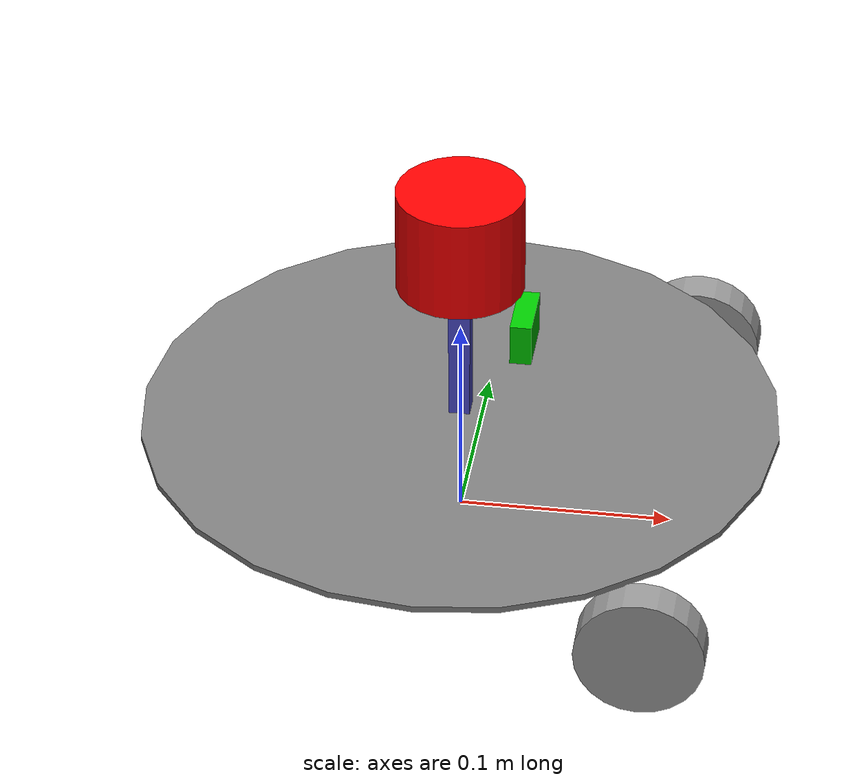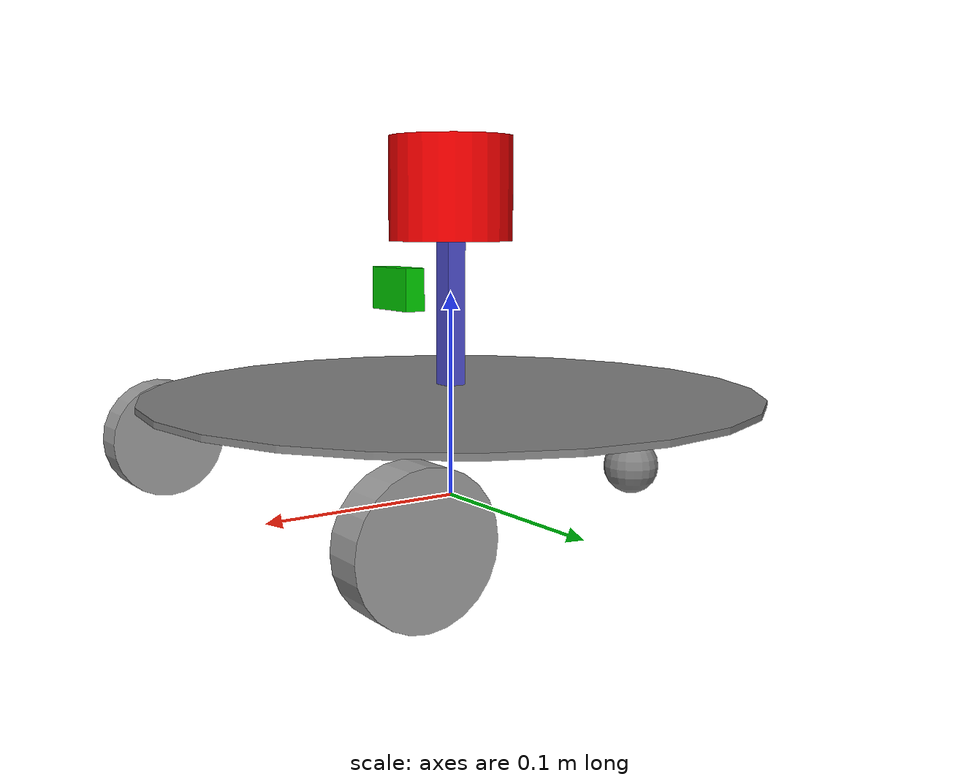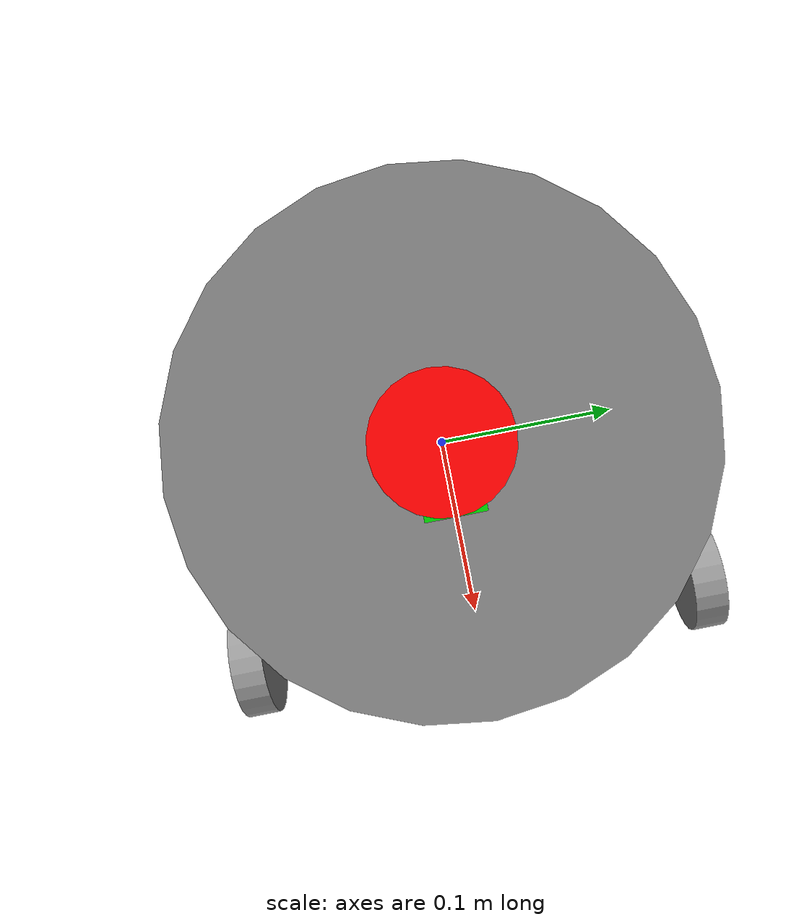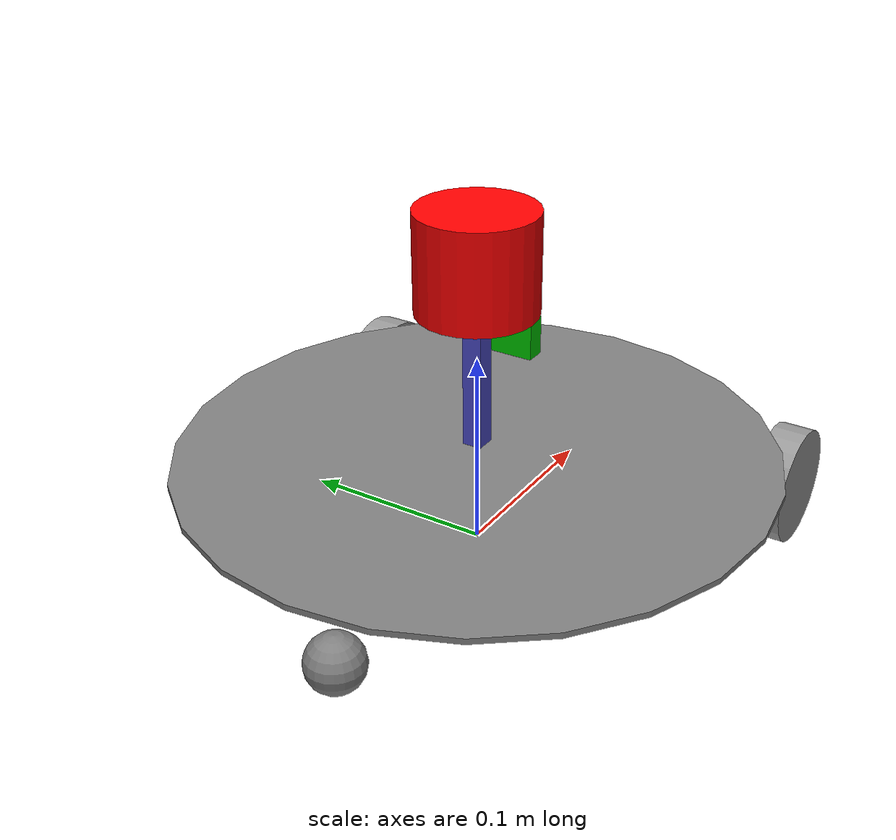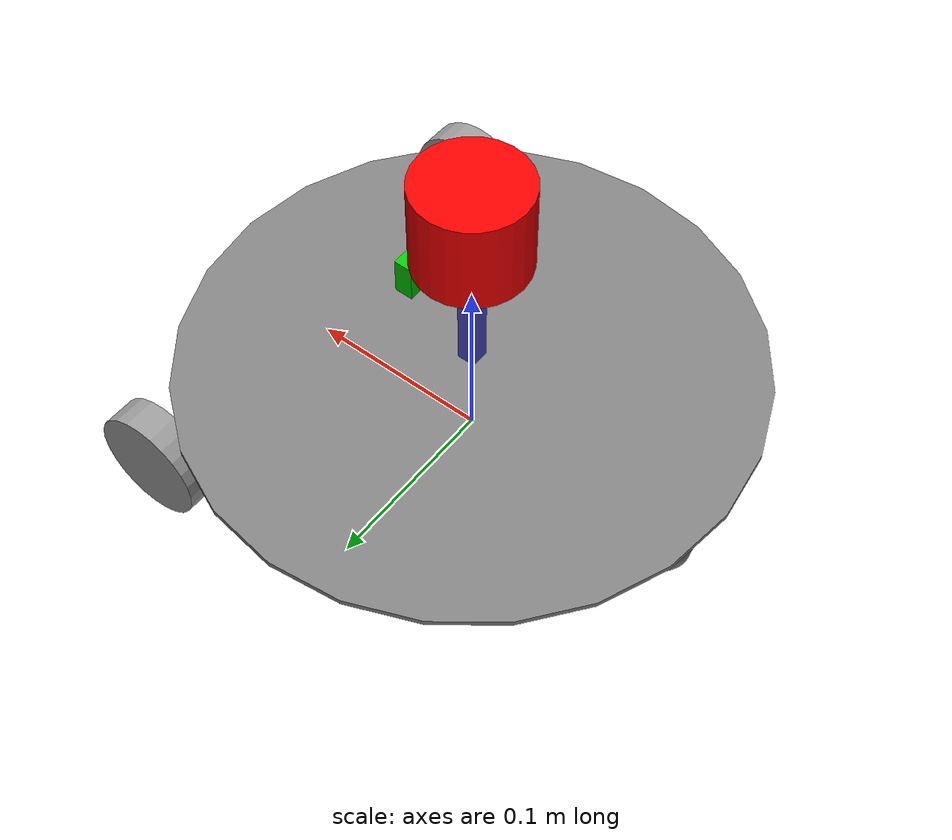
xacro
<?xml version="1.0"?>
<robot name="dome_x2" xmlns:xacro="http://www.ros.org/wiki/xacro">
  <material name="gray">
    <color rgba="0.5 0.5 0.5 1.0" />
  </material>
  <material name="black">
    <color rgba="0 0 0 1" />
  </material>
  <material name="red">
    <color rgba="1 0 0 1" />
  </material>
  <material name="blue">
    <color rgba="0.3 0.3 0.8 1" />
  </material>
  <material name="green">
    <color rgba="0 0.8 0 1" />
  </material>
  <link name="base_footprint" />
  <link name="base_link">
    <visual>
      <geometry>
        <cylinder radius="0.15" length="0.003" />
      </geometry>
      <material name="gray" />
    </visual>
    <collision>
      <geometry>
        <cylinder radius="0.15" length="0.003" />
      </geometry>
    </collision>
  </link>
  <link name="left_wheel">
    <visual>
      <origin rpy="1.5708 0 0" />
      <geometry>
        <cylinder radius="0.03" length="0.0175" />
      </geometry>
      <material name="grey" />
    </visual>
    <collision>
      <origin rpy="1.5708 0 0" />
      <geometry>
        <cylinder radius="0.03" length="0.0175" />
      </geometry>
    </collision>
  </link>
  <link name="right_wheel">
    <visual>
      <origin rpy="1.5708 0 0" />
      <geometry>
        <cylinder radius="0.03" length="0.0175" />
      </geometry>
      <material name="grey" />
    </visual>
    <collision>
      <origin rpy="1.5708 0 0" />
      <geometry>
        <cylinder radius="0.03" length="0.0175" />
      </geometry>
    </collision>
  </link>
  <link name="caster">
    <visual>
      <geometry>
        <sphere radius="0.015" />
      </geometry>
      <material name="gray" />
    </visual>
    <collision>
      <geometry>
        <sphere radius="0.015" />
      </geometry>
    </collision>
  </link>
  <link name="lidar_post">
    <visual>
      <geometry>
        <box size="0.01 0.01 0.09" />
      </geometry>
      <material name="blue" />
    </visual>
    <collision>
      <geometry>
        <box size="0.01 0.01 0.09" />
      </geometry>
    </collision>
  </link>
  <link name="lidar">
    <visual>
      <geometry>
        <cylinder radius="0.03" length="0.05" />
      </geometry>
      <material name="red" />
    </visual>
    <collision>
      <geometry>
        <cylinder radius="0.03" length="0.05" />
      </geometry>
    </collision>
  </link>
  <link name="imu_link">
    <visual>
      <geometry>
        <box size="0.03 0.02 0.01" />
      </geometry>
      <material name="green" />
    </visual>
    <collision>
      <geometry>
        <box size="0.03 0.02 0.01" />
      </geometry>
    </collision>
  </link>
  <joint name="base_footprint_to_base_link" type="fixed">
    <parent link="base_footprint" />
    <child link="base_link" />
    <origin xyz="0 0 0.05" />
  </joint>
  <joint name="base_link_to_left_wheel" type="continuous">
    <parent link="base_link" />
    <child link="left_wheel" />
    <origin xyz="0.1 0.125 -0.03" />
    <axis xyz="0 1 0" />
  </joint>
  <joint name="base_link_to_right_wheel" type="continuous">
    <parent link="base_link" />
    <child link="right_wheel" />
    <origin xyz="0.1 -0.125 -0.03" />
    <axis xyz="0 1 0" />
  </joint>
  <joint name="base_link_to_caster" type="fixed">
    <parent link="base_link" />
    <child link="caster" />
    <origin xyz="-0.12 0 -0.05" />
  </joint>
  <joint name="base_link_to_imu_link" type="fixed">
    <parent link="base_link" />
    <child link="imu_link" />
    <origin xyz="0.03 0 0.053" rpy="1.5708 0 1.5708" />
  </joint>
  <joint name="base_link_to_lidar_post" type="fixed">
    <parent link="base_link" />
    <child link="lidar_post" />
    <origin xyz="0 0 0.05" />
  </joint>
  <joint name="lidar_post_to_lidar" type="fixed">
    <parent link="lidar_post" />
    <child link="lidar" />
    <origin xyz="0 0 0.05" />
  </joint>
</robot>
